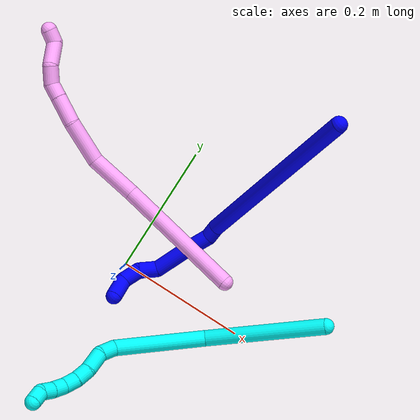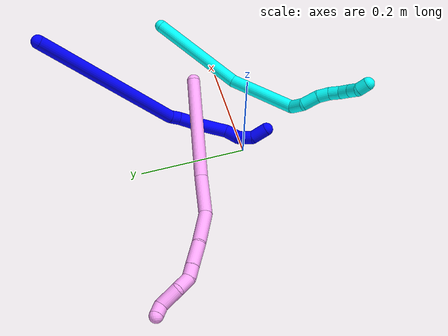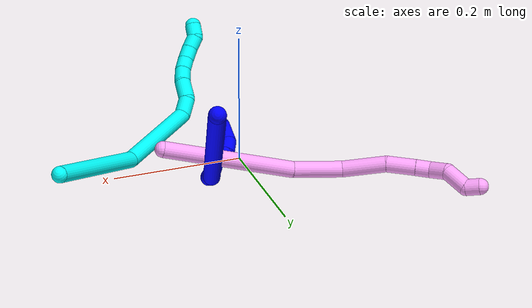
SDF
<sdf version="1.7">
 <world name="default">
  <model name="1">
   <static>0</static>
   <link name="1">
    <collision name="collision-cylinder-e_1_1_4">
     <pose>-0.004018 0.023213 -0.146295 -2.98423 -0.027121 0.340684</pose>
     <geometry><cylinder><radius>0.0125</radius><length>0.296358</length></cylinder></geometry>
     <surface>
      <friction><ode><mu>1.16</mu><mu2>1.16</mu2><slip1>0</slip1><slip2>0</slip2></ode></friction>
      <contact><ode><kp>1e+06</kp><kd>1</kd><max_vel>0</max_vel><min_depth>0.001</min_depth></ode></contact>
     </surface>
    </collision>
    <visual name="visual-cylinder-e_1_1_4">
     <pose>-0.004018 0.023213 -0.146295 -2.98423 -0.027121 0.340684</pose>
     <geometry><cylinder><radius>0.0125</radius><length>0.296358</length></cylinder></geometry>
     <material><ambient>0 0 1 1</ambient></material>
    </visual>
    <collision name="collision-cylinder-e_2_4_5">
     <pose>-0.006138 0.045737 -0.302384 3.07143 0.191033 2.43936</pose>
     <geometry><cylinder><radius>0.0125</radius><length>0.020002</length></cylinder></geometry>
     <surface>
      <friction><ode><mu>1.16</mu><mu2>1.16</mu2><slip1>0</slip1><slip2>0</slip2></ode></friction>
      <contact><ode><kp>1e+06</kp><kd>1</kd><max_vel>0</max_vel><min_depth>0.001</min_depth></ode></contact>
     </surface>
    </collision>
    <visual name="visual-cylinder-e_2_4_5">
     <pose>-0.006138 0.045737 -0.302384 3.07143 0.191033 2.43936</pose>
     <geometry><cylinder><radius>0.0125</radius><length>0.020002</length></cylinder></geometry>
     <material><ambient>0 0 1 1</ambient></material>
    </visual>
    <collision name="collision-cylinder-e_3_5_6">
     <pose>-0.006481 0.037928 -0.330667 2.77396 -0.112707 -0.589214</pose>
     <geometry><cylinder><radius>0.0125</radius><length>0.039878</length></cylinder></geometry>
     <surface>
      <friction><ode><mu>1.16</mu><mu2>1.16</mu2><slip1>0</slip1><slip2>0</slip2></ode></friction>
      <contact><ode><kp>1e+06</kp><kd>1</kd><max_vel>0</max_vel><min_depth>0.001</min_depth></ode></contact>
     </surface>
    </collision>
    <visual name="visual-cylinder-e_3_5_6">
     <pose>-0.006481 0.037928 -0.330667 2.77396 -0.112707 -0.589214</pose>
     <geometry><cylinder><radius>0.0125</radius><length>0.039878</length></cylinder></geometry>
     <material><ambient>0 0 1 1</ambient></material>
    </visual>
    <collision name="collision-cylinder-e_4_6_7">
     <pose>-0.010253 0.020096 -0.37478 2.74567 -0.055008 -0.272603</pose>
     <geometry><cylinder><radius>0.0125</radius><length>0.055629</length></cylinder></geometry>
     <surface>
      <friction><ode><mu>1.16</mu><mu2>1.16</mu2><slip1>0</slip1><slip2>0</slip2></ode></friction>
      <contact><ode><kp>1e+06</kp><kd>1</kd><max_vel>0</max_vel><min_depth>0.001</min_depth></ode></contact>
     </surface>
    </collision>
    <visual name="visual-cylinder-e_4_6_7">
     <pose>-0.010253 0.020096 -0.37478 2.74567 -0.055008 -0.272603</pose>
     <geometry><cylinder><radius>0.0125</radius><length>0.055629</length></cylinder></geometry>
     <material><ambient>0 0 1 1</ambient></material>
    </visual>
    <collision name="collision-cylinder-e_5_7_8">
     <pose>-0.018827 0.000609 -0.409309 2.36345 -0.513086 -1.13842</pose>
     <geometry><cylinder><radius>0.0125</radius><length>0.028703</length></cylinder></geometry>
     <surface>
      <friction><ode><mu>1.16</mu><mu2>1.16</mu2><slip1>0</slip1><slip2>0</slip2></ode></friction>
      <contact><ode><kp>1e+06</kp><kd>1</kd><max_vel>0</max_vel><min_depth>0.001</min_depth></ode></contact>
     </surface>
    </collision>
    <visual name="visual-cylinder-e_5_7_8">
     <pose>-0.018827 0.000609 -0.409309 2.36345 -0.513086 -1.13842</pose>
     <geometry><cylinder><radius>0.0125</radius><length>0.028703</length></cylinder></geometry>
     <material><ambient>0 0 1 1</ambient></material>
    </visual>
    <collision name="collision-cylinder-e_6_8_9">
     <pose>-0.026076 -0.018707 -0.427609 2.29886 -0.014482 -0.032307</pose>
     <geometry><cylinder><radius>0.0125</radius><length>0.028238</length></cylinder></geometry>
     <surface>
      <friction><ode><mu>1.16</mu><mu2>1.16</mu2><slip1>0</slip1><slip2>0</slip2></ode></friction>
      <contact><ode><kp>1e+06</kp><kd>1</kd><max_vel>0</max_vel><min_depth>0.001</min_depth></ode></contact>
     </surface>
    </collision>
    <visual name="visual-cylinder-e_6_8_9">
     <pose>-0.026076 -0.018707 -0.427609 2.29886 -0.014482 -0.032307</pose>
     <geometry><cylinder><radius>0.0125</radius><length>0.028238</length></cylinder></geometry>
     <material><ambient>0 0 1 1</ambient></material>
    </visual>
    <collision name="collision-cylinder-e_7_9_2">
     <pose>-0.019654 -0.041898 -0.443264 2.0303 0.438882 0.689705</pose>
     <geometry><cylinder><radius>0.0125</radius><length>0.031192</length></cylinder></geometry>
     <surface>
      <friction><ode><mu>1.16</mu><mu2>1.16</mu2><slip1>0</slip1><slip2>0</slip2></ode></friction>
      <contact><ode><kp>1e+06</kp><kd>1</kd><max_vel>0</max_vel><min_depth>0.001</min_depth></ode></contact>
     </surface>
    </collision>
    <visual name="visual-cylinder-e_7_9_2">
     <pose>-0.019654 -0.041898 -0.443264 2.0303 0.438882 0.689705</pose>
     <geometry><cylinder><radius>0.0125</radius><length>0.031192</length></cylinder></geometry>
     <material><ambient>0 0 1 1</ambient></material>
    </visual>
    <collision name="collision-sphere-2">
     <pose>-0.013027 -0.054552 -0.449525 0 -0 0</pose>
     <geometry><sphere><radius>0.0125</radius></sphere></geometry>
     <surface>
      <friction><ode><mu>1.16</mu><mu2>1.16</mu2><slip1>0</slip1><slip2>0</slip2></ode></friction>
      <contact><ode><kp>1e+06</kp><kd>1</kd><max_vel>0</max_vel><min_depth>0.001</min_depth></ode></contact>
     </surface>
    </collision>
    <visual name="visual-sphere-2">
     <pose>-0.013027 -0.054552 -0.449525 0 -0 0</pose>
     <geometry><sphere><radius>0.0125</radius></sphere></geometry>
     <material><ambient>0 0 1 1</ambient></material>
    </visual>
    <collision name="collision-sphere-9">
     <pose>-0.026281 -0.029245 -0.437003 0 -0 0</pose>
     <geometry><sphere><radius>0.0125</radius></sphere></geometry>
     <surface>
      <friction><ode><mu>1.16</mu><mu2>1.16</mu2><slip1>0</slip1><slip2>0</slip2></ode></friction>
      <contact><ode><kp>1e+06</kp><kd>1</kd><max_vel>0</max_vel><min_depth>0.001</min_depth></ode></contact>
     </surface>
    </collision>
    <visual name="visual-sphere-9">
     <pose>-0.026281 -0.029245 -0.437003 0 -0 0</pose>
     <geometry><sphere><radius>0.0125</radius></sphere></geometry>
     <material><ambient>0 0 1 1</ambient></material>
    </visual>
    <collision name="collision-sphere-4">
     <pose>-0.008037 0.046425 -0.292589 0 -0 0</pose>
     <geometry><sphere><radius>0.0125</radius></sphere></geometry>
     <surface>
      <friction><ode><mu>1.16</mu><mu2>1.16</mu2><slip1>0</slip1><slip2>0</slip2></ode></friction>
      <contact><ode><kp>1e+06</kp><kd>1</kd><max_vel>0</max_vel><min_depth>0.001</min_depth></ode></contact>
     </surface>
    </collision>
    <visual name="visual-sphere-4">
     <pose>-0.008037 0.046425 -0.292589 0 -0 0</pose>
     <geometry><sphere><radius>0.0125</radius></sphere></geometry>
     <material><ambient>0 0 1 1</ambient></material>
    </visual>
    <collision name="collision-sphere-1">
     <geometry><sphere><radius>0.0125</radius></sphere></geometry>
     <surface>
      <friction><ode><mu>1.16</mu><mu2>1.16</mu2><slip1>0</slip1><slip2>0</slip2></ode></friction>
      <contact><ode><kp>1e+06</kp><kd>1</kd><max_vel>0</max_vel><min_depth>0.001</min_depth></ode></contact>
     </surface>
    </collision>
    <visual name="visual-sphere-1">
     <geometry><sphere><radius>0.0125</radius></sphere></geometry>
     <material><ambient>0 0 1 1</ambient></material>
    </visual>
    <collision name="collision-sphere-8">
     <pose>-0.025872 -0.008168 -0.418215 0 -0 0</pose>
     <geometry><sphere><radius>0.0125</radius></sphere></geometry>
     <surface>
      <friction><ode><mu>1.16</mu><mu2>1.16</mu2><slip1>0</slip1><slip2>0</slip2></ode></friction>
      <contact><ode><kp>1e+06</kp><kd>1</kd><max_vel>0</max_vel><min_depth>0.001</min_depth></ode></contact>
     </surface>
    </collision>
    <visual name="visual-sphere-8">
     <pose>-0.025872 -0.008168 -0.418215 0 -0 0</pose>
     <geometry><sphere><radius>0.0125</radius></sphere></geometry>
     <material><ambient>0 0 1 1</ambient></material>
    </visual>
    <collision name="collision-sphere-5">
     <pose>-0.004239 0.045048 -0.312179 0 -0 0</pose>
     <geometry><sphere><radius>0.0125</radius></sphere></geometry>
     <surface>
      <friction><ode><mu>1.16</mu><mu2>1.16</mu2><slip1>0</slip1><slip2>0</slip2></ode></friction>
      <contact><ode><kp>1e+06</kp><kd>1</kd><max_vel>0</max_vel><min_depth>0.001</min_depth></ode></contact>
     </surface>
    </collision>
    <visual name="visual-sphere-5">
     <pose>-0.004239 0.045048 -0.312179 0 -0 0</pose>
     <geometry><sphere><radius>0.0125</radius></sphere></geometry>
     <material><ambient>0 0 1 1</ambient></material>
    </visual>
    <collision name="collision-sphere-6">
     <pose>-0.008724 0.030807 -0.349156 0 -0 0</pose>
     <geometry><sphere><radius>0.0125</radius></sphere></geometry>
     <surface>
      <friction><ode><mu>1.16</mu><mu2>1.16</mu2><slip1>0</slip1><slip2>0</slip2></ode></friction>
      <contact><ode><kp>1e+06</kp><kd>1</kd><max_vel>0</max_vel><min_depth>0.001</min_depth></ode></contact>
     </surface>
    </collision>
    <visual name="visual-sphere-6">
     <pose>-0.008724 0.030807 -0.349156 0 -0 0</pose>
     <geometry><sphere><radius>0.0125</radius></sphere></geometry>
     <material><ambient>0 0 1 1</ambient></material>
    </visual>
    <collision name="collision-sphere-7">
     <pose>-0.011782 0.009386 -0.400404 0 -0 0</pose>
     <geometry><sphere><radius>0.0125</radius></sphere></geometry>
     <surface>
      <friction><ode><mu>1.16</mu><mu2>1.16</mu2><slip1>0</slip1><slip2>0</slip2></ode></friction>
      <contact><ode><kp>1e+06</kp><kd>1</kd><max_vel>0</max_vel><min_depth>0.001</min_depth></ode></contact>
     </surface>
    </collision>
    <visual name="visual-sphere-7">
     <pose>-0.011782 0.009386 -0.400404 0 -0 0</pose>
     <geometry><sphere><radius>0.0125</radius></sphere></geometry>
     <material><ambient>0 0 1 1</ambient></material>
    </visual>
    <inertial>
     <pose>-0.008064 0.017214 -0.242177 0 -0 0</pose>
     <mass>0.5</mass>
     <inertia>
      <ixx>0.002801</ixx>
      <ixy>0</ixy>
      <ixz>0</ixz>
      <iyy>-0.001331</iyy>
      <iyz>0</iyz>
      <izz>-0.0003</izz>
     </inertia>
    </inertial>
   </link>
   <pose>0.145542 0.329707 0.245091 -0.96862 -0.152689 -0.386949</pose>
  </model>
  <model name="3">
   <static>0</static>
   <link name="3">
    <collision name="collision-cylinder-e_1_1_4">
     <pose>-0.060215 -0.00586 -0.072539 3.06098 -0.691232 -2.91852</pose>
     <geometry><cylinder><radius>0.0125</radius><length>0.188915</length></cylinder></geometry>
     <surface>
      <friction><ode><mu>1.16</mu><mu2>1.16</mu2><slip1>0</slip1><slip2>0</slip2></ode></friction>
      <contact><ode><kp>1e+06</kp><kd>1</kd><max_vel>0</max_vel><min_depth>0.001</min_depth></ode></contact>
     </surface>
    </collision>
    <visual name="visual-cylinder-e_1_1_4">
     <pose>-0.060215 -0.00586 -0.072539 3.06098 -0.691232 -2.91852</pose>
     <geometry><cylinder><radius>0.0125</radius><length>0.188915</length></cylinder></geometry>
     <material><ambient>0.003922 1 0.996078 1</ambient></material>
    </visual>
    <collision name="collision-cylinder-e_2_4_5">
     <pose>-0.182528 -0.024697 -0.176338 2.74813 -1.07177 -2.49397</pose>
     <geometry><cylinder><radius>0.0125</radius><length>0.141444</length></cylinder></geometry>
     <surface>
      <friction><ode><mu>1.16</mu><mu2>1.16</mu2><slip1>0</slip1><slip2>0</slip2></ode></friction>
      <contact><ode><kp>1e+06</kp><kd>1</kd><max_vel>0</max_vel><min_depth>0.001</min_depth></ode></contact>
     </surface>
    </collision>
    <visual name="visual-cylinder-e_2_4_5">
     <pose>-0.182528 -0.024697 -0.176338 2.74813 -1.07177 -2.49397</pose>
     <geometry><cylinder><radius>0.0125</radius><length>0.141444</length></cylinder></geometry>
     <material><ambient>0.003922 1 0.996078 1</ambient></material>
    </visual>
    <collision name="collision-cylinder-e_3_5_6">
     <pose>-0.256936 -0.044728 -0.206585 1.42833 -1.046 -0.9269</pose>
     <geometry><cylinder><radius>0.0125</radius><length>0.02845</length></cylinder></geometry>
     <surface>
      <friction><ode><mu>1.16</mu><mu2>1.16</mu2><slip1>0</slip1><slip2>0</slip2></ode></friction>
      <contact><ode><kp>1e+06</kp><kd>1</kd><max_vel>0</max_vel><min_depth>0.001</min_depth></ode></contact>
     </surface>
    </collision>
    <visual name="visual-cylinder-e_3_5_6">
     <pose>-0.256936 -0.044728 -0.206585 1.42833 -1.046 -0.9269</pose>
     <geometry><cylinder><radius>0.0125</radius><length>0.02845</length></cylinder></geometry>
     <material><ambient>0.003922 1 0.996078 1</ambient></material>
    </visual>
    <collision name="collision-cylinder-e_4_6_7">
     <pose>-0.27792 -0.065484 -0.205949 1.59822 -0.564151 -0.578987</pose>
     <geometry><cylinder><radius>0.0125</radius><length>0.03244</length></cylinder></geometry>
     <surface>
      <friction><ode><mu>1.16</mu><mu2>1.16</mu2><slip1>0</slip1><slip2>0</slip2></ode></friction>
      <contact><ode><kp>1e+06</kp><kd>1</kd><max_vel>0</max_vel><min_depth>0.001</min_depth></ode></contact>
     </surface>
    </collision>
    <visual name="visual-cylinder-e_4_6_7">
     <pose>-0.27792 -0.065484 -0.205949 1.59822 -0.564151 -0.578987</pose>
     <geometry><cylinder><radius>0.0125</radius><length>0.03244</length></cylinder></geometry>
     <material><ambient>0.003922 1 0.996078 1</ambient></material>
    </visual>
    <collision name="collision-cylinder-e_5_7_8">
     <pose>-0.294604 -0.08756 -0.208345 1.80755 -0.749147 -0.926125</pose>
     <geometry><cylinder><radius>0.0125</radius><length>0.023528</length></cylinder></geometry>
     <surface>
      <friction><ode><mu>1.16</mu><mu2>1.16</mu2><slip1>0</slip1><slip2>0</slip2></ode></friction>
      <contact><ode><kp>1e+06</kp><kd>1</kd><max_vel>0</max_vel><min_depth>0.001</min_depth></ode></contact>
     </surface>
    </collision>
    <visual name="visual-cylinder-e_5_7_8">
     <pose>-0.294604 -0.08756 -0.208345 1.80755 -0.749147 -0.926125</pose>
     <geometry><cylinder><radius>0.0125</radius><length>0.023528</length></cylinder></geometry>
     <material><ambient>0.003922 1 0.996078 1</ambient></material>
    </visual>
    <collision name="collision-cylinder-e_6_8_9">
     <pose>-0.311644 -0.102089 -0.21225 1.86791 -0.951426 -1.21677</pose>
     <geometry><cylinder><radius>0.0125</radius><length>0.022178</length></cylinder></geometry>
     <surface>
      <friction><ode><mu>1.16</mu><mu2>1.16</mu2><slip1>0</slip1><slip2>0</slip2></ode></friction>
      <contact><ode><kp>1e+06</kp><kd>1</kd><max_vel>0</max_vel><min_depth>0.001</min_depth></ode></contact>
     </surface>
    </collision>
    <visual name="visual-cylinder-e_6_8_9">
     <pose>-0.311644 -0.102089 -0.21225 1.86791 -0.951426 -1.21677</pose>
     <geometry><cylinder><radius>0.0125</radius><length>0.022178</length></cylinder></geometry>
     <material><ambient>0.003922 1 0.996078 1</ambient></material>
    </visual>
    <collision name="collision-cylinder-e_7_9_10">
     <pose>-0.330227 -0.112989 -0.213493 1.43637 -1.10621 -0.989513</pose>
     <geometry><cylinder><radius>0.0125</radius><length>0.021372</length></cylinder></geometry>
     <surface>
      <friction><ode><mu>1.16</mu><mu2>1.16</mu2><slip1>0</slip1><slip2>0</slip2></ode></friction>
      <contact><ode><kp>1e+06</kp><kd>1</kd><max_vel>0</max_vel><min_depth>0.001</min_depth></ode></contact>
     </surface>
    </collision>
    <visual name="visual-cylinder-e_7_9_10">
     <pose>-0.330227 -0.112989 -0.213493 1.43637 -1.10621 -0.989513</pose>
     <geometry><cylinder><radius>0.0125</radius><length>0.021372</length></cylinder></geometry>
     <material><ambient>0.003922 1 0.996078 1</ambient></material>
    </visual>
    <collision name="collision-cylinder-e_8_10_11">
     <pose>-0.349556 -0.121107 -0.211257 1.12904 -1.2062 -0.822514</pose>
     <geometry><cylinder><radius>0.0125</radius><length>0.020927</length></cylinder></geometry>
     <surface>
      <friction><ode><mu>1.16</mu><mu2>1.16</mu2><slip1>0</slip1><slip2>0</slip2></ode></friction>
      <contact><ode><kp>1e+06</kp><kd>1</kd><max_vel>0</max_vel><min_depth>0.001</min_depth></ode></contact>
     </surface>
    </collision>
    <visual name="visual-cylinder-e_8_10_11">
     <pose>-0.349556 -0.121107 -0.211257 1.12904 -1.2062 -0.822514</pose>
     <geometry><cylinder><radius>0.0125</radius><length>0.020927</length></cylinder></geometry>
     <material><ambient>0.003922 1 0.996078 1</ambient></material>
    </visual>
    <collision name="collision-cylinder-e_9_11_2">
     <pose>-0.365358 -0.132828 -0.208397 1.42047 -0.619904 -0.537507</pose>
     <geometry><cylinder><radius>0.0125</radius><length>0.020747</length></cylinder></geometry>
     <surface>
      <friction><ode><mu>1.16</mu><mu2>1.16</mu2><slip1>0</slip1><slip2>0</slip2></ode></friction>
      <contact><ode><kp>1e+06</kp><kd>1</kd><max_vel>0</max_vel><min_depth>0.001</min_depth></ode></contact>
     </surface>
    </collision>
    <visual name="visual-cylinder-e_9_11_2">
     <pose>-0.365358 -0.132828 -0.208397 1.42047 -0.619904 -0.537507</pose>
     <geometry><cylinder><radius>0.0125</radius><length>0.020747</length></cylinder></geometry>
     <material><ambient>0.003922 1 0.996078 1</ambient></material>
    </visual>
    <collision name="collision-sphere-2">
     <pose>-0.371384 -0.141176 -0.207133 0 -0 0</pose>
     <geometry><sphere><radius>0.0125</radius></sphere></geometry>
     <surface>
      <friction><ode><mu>1.16</mu><mu2>1.16</mu2><slip1>0</slip1><slip2>0</slip2></ode></friction>
      <contact><ode><kp>1e+06</kp><kd>1</kd><max_vel>0</max_vel><min_depth>0.001</min_depth></ode></contact>
     </surface>
    </collision>
    <visual name="visual-sphere-2">
     <pose>-0.371384 -0.141176 -0.207133 0 -0 0</pose>
     <geometry><sphere><radius>0.0125</radius></sphere></geometry>
     <material><ambient>0.003922 1 0.996078 1</ambient></material>
    </visual>
    <collision name="collision-sphere-11">
     <pose>-0.359331 -0.12448 -0.209662 0 -0 0</pose>
     <geometry><sphere><radius>0.0125</radius></sphere></geometry>
     <surface>
      <friction><ode><mu>1.16</mu><mu2>1.16</mu2><slip1>0</slip1><slip2>0</slip2></ode></friction>
      <contact><ode><kp>1e+06</kp><kd>1</kd><max_vel>0</max_vel><min_depth>0.001</min_depth></ode></contact>
     </surface>
    </collision>
    <visual name="visual-sphere-11">
     <pose>-0.359331 -0.12448 -0.209662 0 -0 0</pose>
     <geometry><sphere><radius>0.0125</radius></sphere></geometry>
     <material><ambient>0.003922 1 0.996078 1</ambient></material>
    </visual>
    <collision name="collision-sphere-10">
     <pose>-0.33978 -0.117734 -0.212852 0 -0 0</pose>
     <geometry><sphere><radius>0.0125</radius></sphere></geometry>
     <surface>
      <friction><ode><mu>1.16</mu><mu2>1.16</mu2><slip1>0</slip1><slip2>0</slip2></ode></friction>
      <contact><ode><kp>1e+06</kp><kd>1</kd><max_vel>0</max_vel><min_depth>0.001</min_depth></ode></contact>
     </surface>
    </collision>
    <visual name="visual-sphere-10">
     <pose>-0.33978 -0.117734 -0.212852 0 -0 0</pose>
     <geometry><sphere><radius>0.0125</radius></sphere></geometry>
     <material><ambient>0.003922 1 0.996078 1</ambient></material>
    </visual>
    <collision name="collision-sphere-9">
     <pose>-0.320674 -0.108245 -0.214135 0 -0 0</pose>
     <geometry><sphere><radius>0.0125</radius></sphere></geometry>
     <surface>
      <friction><ode><mu>1.16</mu><mu2>1.16</mu2><slip1>0</slip1><slip2>0</slip2></ode></friction>
      <contact><ode><kp>1e+06</kp><kd>1</kd><max_vel>0</max_vel><min_depth>0.001</min_depth></ode></contact>
     </surface>
    </collision>
    <visual name="visual-sphere-9">
     <pose>-0.320674 -0.108245 -0.214135 0 -0 0</pose>
     <geometry><sphere><radius>0.0125</radius></sphere></geometry>
     <material><ambient>0.003922 1 0.996078 1</ambient></material>
    </visual>
    <collision name="collision-sphere-4">
     <pose>-0.120431 -0.011721 -0.145079 0 -0 0</pose>
     <geometry><sphere><radius>0.0125</radius></sphere></geometry>
     <surface>
      <friction><ode><mu>1.16</mu><mu2>1.16</mu2><slip1>0</slip1><slip2>0</slip2></ode></friction>
      <contact><ode><kp>1e+06</kp><kd>1</kd><max_vel>0</max_vel><min_depth>0.001</min_depth></ode></contact>
     </surface>
    </collision>
    <visual name="visual-sphere-4">
     <pose>-0.120431 -0.011721 -0.145079 0 -0 0</pose>
     <geometry><sphere><radius>0.0125</radius></sphere></geometry>
     <material><ambient>0.003922 1 0.996078 1</ambient></material>
    </visual>
    <collision name="collision-sphere-1">
     <geometry><sphere><radius>0.0125</radius></sphere></geometry>
     <surface>
      <friction><ode><mu>1.16</mu><mu2>1.16</mu2><slip1>0</slip1><slip2>0</slip2></ode></friction>
      <contact><ode><kp>1e+06</kp><kd>1</kd><max_vel>0</max_vel><min_depth>0.001</min_depth></ode></contact>
     </surface>
    </collision>
    <visual name="visual-sphere-1">
     <geometry><sphere><radius>0.0125</radius></sphere></geometry>
     <material><ambient>0.003922 1 0.996078 1</ambient></material>
    </visual>
    <collision name="collision-sphere-8">
     <pose>-0.302615 -0.095934 -0.210366 0 -0 0</pose>
     <geometry><sphere><radius>0.0125</radius></sphere></geometry>
     <surface>
      <friction><ode><mu>1.16</mu><mu2>1.16</mu2><slip1>0</slip1><slip2>0</slip2></ode></friction>
      <contact><ode><kp>1e+06</kp><kd>1</kd><max_vel>0</max_vel><min_depth>0.001</min_depth></ode></contact>
     </surface>
    </collision>
    <visual name="visual-sphere-8">
     <pose>-0.302615 -0.095934 -0.210366 0 -0 0</pose>
     <geometry><sphere><radius>0.0125</radius></sphere></geometry>
     <material><ambient>0.003922 1 0.996078 1</ambient></material>
    </visual>
    <collision name="collision-sphere-5">
     <pose>-0.244625 -0.037673 -0.207597 0 -0 0</pose>
     <geometry><sphere><radius>0.0125</radius></sphere></geometry>
     <surface>
      <friction><ode><mu>1.16</mu><mu2>1.16</mu2><slip1>0</slip1><slip2>0</slip2></ode></friction>
      <contact><ode><kp>1e+06</kp><kd>1</kd><max_vel>0</max_vel><min_depth>0.001</min_depth></ode></contact>
     </surface>
    </collision>
    <visual name="visual-sphere-5">
     <pose>-0.244625 -0.037673 -0.207597 0 -0 0</pose>
     <geometry><sphere><radius>0.0125</radius></sphere></geometry>
     <material><ambient>0.003922 1 0.996078 1</ambient></material>
    </visual>
    <collision name="collision-sphere-6">
     <pose>-0.269247 -0.051783 -0.205573 0 -0 0</pose>
     <geometry><sphere><radius>0.0125</radius></sphere></geometry>
     <surface>
      <friction><ode><mu>1.16</mu><mu2>1.16</mu2><slip1>0</slip1><slip2>0</slip2></ode></friction>
      <contact><ode><kp>1e+06</kp><kd>1</kd><max_vel>0</max_vel><min_depth>0.001</min_depth></ode></contact>
     </surface>
    </collision>
    <visual name="visual-sphere-6">
     <pose>-0.269247 -0.051783 -0.205573 0 -0 0</pose>
     <geometry><sphere><radius>0.0125</radius></sphere></geometry>
     <material><ambient>0.003922 1 0.996078 1</ambient></material>
    </visual>
    <collision name="collision-sphere-7">
     <pose>-0.286592 -0.079186 -0.206325 0 -0 0</pose>
     <geometry><sphere><radius>0.0125</radius></sphere></geometry>
     <surface>
      <friction><ode><mu>1.16</mu><mu2>1.16</mu2><slip1>0</slip1><slip2>0</slip2></ode></friction>
      <contact><ode><kp>1e+06</kp><kd>1</kd><max_vel>0</max_vel><min_depth>0.001</min_depth></ode></contact>
     </surface>
    </collision>
    <visual name="visual-sphere-7">
     <pose>-0.286592 -0.079186 -0.206325 0 -0 0</pose>
     <geometry><sphere><radius>0.0125</radius></sphere></geometry>
     <material><ambient>0.003922 1 0.996078 1</ambient></material>
    </visual>
    <inertial>
     <pose>-0.178629 -0.040053 -0.148241 0 -0 0</pose>
     <mass>0.5</mass>
     <inertia>
      <ixx>-0.000716</ixx>
      <ixy>0</ixy>
      <ixz>0</ixz>
      <iyy>0.000611</iyy>
      <iyz>0</iyz>
      <izz>0.00066</izz>
     </inertia>
    </inertial>
   </link>
   <pose>0.303565 0.086365 0.06729 -0.405056 0.501294 0.311089</pose>
  </model>
  <model name="4">
   <static>0</static>
   <link name="4">
    <collision name="collision-cylinder-e_1_1_4">
     <pose>-0.015883 -0.010001 0.098374 0.101316 -0.159269 -0.008092</pose>
     <geometry><cylinder><radius>0.0125</radius><length>0.200298</length></cylinder></geometry>
     <surface>
      <friction><ode><mu>1.16</mu><mu2>1.16</mu2><slip1>0</slip1><slip2>0</slip2></ode></friction>
      <contact><ode><kp>1e+06</kp><kd>1</kd><max_vel>0</max_vel><min_depth>0.001</min_depth></ode></contact>
     </surface>
    </collision>
    <visual name="visual-cylinder-e_1_1_4">
     <pose>-0.015883 -0.010001 0.098374 0.101316 -0.159269 -0.008092</pose>
     <geometry><cylinder><radius>0.0125</radius><length>0.200298</length></cylinder></geometry>
     <material><ambient>1 0.65098 0.996078 1</ambient></material>
    </visual>
    <collision name="collision-cylinder-e_2_4_5">
     <pose>-0.033107 -0.019725 0.234661 -0.007315 -0.03533 0.000129</pose>
     <geometry><cylinder><radius>0.0125</radius><length>0.075874</length></cylinder></geometry>
     <surface>
      <friction><ode><mu>1.16</mu><mu2>1.16</mu2><slip1>0</slip1><slip2>0</slip2></ode></friction>
      <contact><ode><kp>1e+06</kp><kd>1</kd><max_vel>0</max_vel><min_depth>0.001</min_depth></ode></contact>
     </surface>
    </collision>
    <visual name="visual-cylinder-e_2_4_5">
     <pose>-0.033107 -0.019725 0.234661 -0.007315 -0.03533 0.000129</pose>
     <geometry><cylinder><radius>0.0125</radius><length>0.075874</length></cylinder></geometry>
     <material><ambient>1 0.65098 0.996078 1</ambient></material>
    </visual>
    <collision name="collision-cylinder-e_3_5_6">
     <pose>-0.037197 -0.006688 0.303798 -0.387917 -0.081342 0.015986</pose>
     <geometry><cylinder><radius>0.0125</radius><length>0.067687</length></cylinder></geometry>
     <surface>
      <friction><ode><mu>1.16</mu><mu2>1.16</mu2><slip1>0</slip1><slip2>0</slip2></ode></friction>
      <contact><ode><kp>1e+06</kp><kd>1</kd><max_vel>0</max_vel><min_depth>0.001</min_depth></ode></contact>
     </surface>
    </collision>
    <visual name="visual-cylinder-e_3_5_6">
     <pose>-0.037197 -0.006688 0.303798 -0.387917 -0.081342 0.015986</pose>
     <geometry><cylinder><radius>0.0125</radius><length>0.067687</length></cylinder></geometry>
     <material><ambient>1 0.65098 0.996078 1</ambient></material>
    </visual>
    <collision name="collision-cylinder-e_4_6_7">
     <pose>-0.046227 0.011648 0.355308 -0.268277 -0.290106 0.039421</pose>
     <geometry><cylinder><radius>0.0125</radius><length>0.043909</length></cylinder></geometry>
     <surface>
      <friction><ode><mu>1.16</mu><mu2>1.16</mu2><slip1>0</slip1><slip2>0</slip2></ode></friction>
      <contact><ode><kp>1e+06</kp><kd>1</kd><max_vel>0</max_vel><min_depth>0.001</min_depth></ode></contact>
     </surface>
    </collision>
    <visual name="visual-cylinder-e_4_6_7">
     <pose>-0.046227 0.011648 0.355308 -0.268277 -0.290106 0.039421</pose>
     <geometry><cylinder><radius>0.0125</radius><length>0.043909</length></cylinder></geometry>
     <material><ambient>1 0.65098 0.996078 1</ambient></material>
    </visual>
    <collision name="collision-cylinder-e_5_7_8">
     <pose>-0.055946 0.019781 0.386389 -0.232562 -0.30062 0.035378</pose>
     <geometry><cylinder><radius>0.0125</radius><length>0.023232</length></cylinder></geometry>
     <surface>
      <friction><ode><mu>1.16</mu><mu2>1.16</mu2><slip1>0</slip1><slip2>0</slip2></ode></friction>
      <contact><ode><kp>1e+06</kp><kd>1</kd><max_vel>0</max_vel><min_depth>0.001</min_depth></ode></contact>
     </surface>
    </collision>
    <visual name="visual-cylinder-e_5_7_8">
     <pose>-0.055946 0.019781 0.386389 -0.232562 -0.30062 0.035378</pose>
     <geometry><cylinder><radius>0.0125</radius><length>0.023232</length></cylinder></geometry>
     <material><ambient>1 0.65098 0.996078 1</ambient></material>
    </visual>
    <collision name="collision-cylinder-e_6_8_9">
     <pose>-0.065348 0.031311 0.406623 -0.760138 -0.429359 0.173772</pose>
     <geometry><cylinder><radius>0.0125</radius><length>0.028644</length></cylinder></geometry>
     <surface>
      <friction><ode><mu>1.16</mu><mu2>1.16</mu2><slip1>0</slip1><slip2>0</slip2></ode></friction>
      <contact><ode><kp>1e+06</kp><kd>1</kd><max_vel>0</max_vel><min_depth>0.001</min_depth></ode></contact>
     </surface>
    </collision>
    <visual name="visual-cylinder-e_6_8_9">
     <pose>-0.065348 0.031311 0.406623 -0.760138 -0.429359 0.173772</pose>
     <geometry><cylinder><radius>0.0125</radius><length>0.028644</length></cylinder></geometry>
     <material><ambient>1 0.65098 0.996078 1</ambient></material>
    </visual>
    <collision name="collision-cylinder-e_7_9_10">
     <pose>-0.087019 0.045815 0.426196 -0.499625 -0.93694 0.256805</pose>
     <geometry><cylinder><radius>0.0125</radius><length>0.038992</length></cylinder></geometry>
     <surface>
      <friction><ode><mu>1.16</mu><mu2>1.16</mu2><slip1>0</slip1><slip2>0</slip2></ode></friction>
      <contact><ode><kp>1e+06</kp><kd>1</kd><max_vel>0</max_vel><min_depth>0.001</min_depth></ode></contact>
     </surface>
    </collision>
    <visual name="visual-cylinder-e_7_9_10">
     <pose>-0.087019 0.045815 0.426196 -0.499625 -0.93694 0.256805</pose>
     <geometry><cylinder><radius>0.0125</radius><length>0.038992</length></cylinder></geometry>
     <material><ambient>1 0.65098 0.996078 1</ambient></material>
    </visual>
    <collision name="collision-cylinder-e_8_10_2">
     <pose>-0.104526 0.056501 0.445514 -0.511444 -0.169083 0.044304</pose>
     <geometry><cylinder><radius>0.0125</radius><length>0.021364</length></cylinder></geometry>
     <surface>
      <friction><ode><mu>1.16</mu><mu2>1.16</mu2><slip1>0</slip1><slip2>0</slip2></ode></friction>
      <contact><ode><kp>1e+06</kp><kd>1</kd><max_vel>0</max_vel><min_depth>0.001</min_depth></ode></contact>
     </surface>
    </collision>
    <visual name="visual-cylinder-e_8_10_2">
     <pose>-0.104526 0.056501 0.445514 -0.511444 -0.169083 0.044304</pose>
     <geometry><cylinder><radius>0.0125</radius><length>0.021364</length></cylinder></geometry>
     <material><ambient>1 0.65098 0.996078 1</ambient></material>
    </visual>
    <collision name="collision-sphere-2">
     <pose>-0.106323 0.061654 0.454696 0 -0 0</pose>
     <geometry><sphere><radius>0.0125</radius></sphere></geometry>
     <surface>
      <friction><ode><mu>1.16</mu><mu2>1.16</mu2><slip1>0</slip1><slip2>0</slip2></ode></friction>
      <contact><ode><kp>1e+06</kp><kd>1</kd><max_vel>0</max_vel><min_depth>0.001</min_depth></ode></contact>
     </surface>
    </collision>
    <visual name="visual-sphere-2">
     <pose>-0.106323 0.061654 0.454696 0 -0 0</pose>
     <geometry><sphere><radius>0.0125</radius></sphere></geometry>
     <material><ambient>1 0.65098 0.996078 1</ambient></material>
    </visual>
    <collision name="collision-sphere-10">
     <pose>-0.102728 0.051347 0.436331 0 -0 0</pose>
     <geometry><sphere><radius>0.0125</radius></sphere></geometry>
     <surface>
      <friction><ode><mu>1.16</mu><mu2>1.16</mu2><slip1>0</slip1><slip2>0</slip2></ode></friction>
      <contact><ode><kp>1e+06</kp><kd>1</kd><max_vel>0</max_vel><min_depth>0.001</min_depth></ode></contact>
     </surface>
    </collision>
    <visual name="visual-sphere-10">
     <pose>-0.102728 0.051347 0.436331 0 -0 0</pose>
     <geometry><sphere><radius>0.0125</radius></sphere></geometry>
     <material><ambient>1 0.65098 0.996078 1</ambient></material>
    </visual>
    <collision name="collision-sphere-9">
     <pose>-0.07131 0.040283 0.416061 0 -0 0</pose>
     <geometry><sphere><radius>0.0125</radius></sphere></geometry>
     <surface>
      <friction><ode><mu>1.16</mu><mu2>1.16</mu2><slip1>0</slip1><slip2>0</slip2></ode></friction>
      <contact><ode><kp>1e+06</kp><kd>1</kd><max_vel>0</max_vel><min_depth>0.001</min_depth></ode></contact>
     </surface>
    </collision>
    <visual name="visual-sphere-9">
     <pose>-0.07131 0.040283 0.416061 0 -0 0</pose>
     <geometry><sphere><radius>0.0125</radius></sphere></geometry>
     <material><ambient>1 0.65098 0.996078 1</ambient></material>
    </visual>
    <collision name="collision-sphere-4">
     <pose>-0.031767 -0.020002 0.196748 0 -0 0</pose>
     <geometry><sphere><radius>0.0125</radius></sphere></geometry>
     <surface>
      <friction><ode><mu>1.16</mu><mu2>1.16</mu2><slip1>0</slip1><slip2>0</slip2></ode></friction>
      <contact><ode><kp>1e+06</kp><kd>1</kd><max_vel>0</max_vel><min_depth>0.001</min_depth></ode></contact>
     </surface>
    </collision>
    <visual name="visual-sphere-4">
     <pose>-0.031767 -0.020002 0.196748 0 -0 0</pose>
     <geometry><sphere><radius>0.0125</radius></sphere></geometry>
     <material><ambient>1 0.65098 0.996078 1</ambient></material>
    </visual>
    <collision name="collision-sphere-1">
     <geometry><sphere><radius>0.0125</radius></sphere></geometry>
     <surface>
      <friction><ode><mu>1.16</mu><mu2>1.16</mu2><slip1>0</slip1><slip2>0</slip2></ode></friction>
      <contact><ode><kp>1e+06</kp><kd>1</kd><max_vel>0</max_vel><min_depth>0.001</min_depth></ode></contact>
     </surface>
    </collision>
    <visual name="visual-sphere-1">
     <geometry><sphere><radius>0.0125</radius></sphere></geometry>
     <material><ambient>1 0.65098 0.996078 1</ambient></material>
    </visual>
    <collision name="collision-sphere-8">
     <pose>-0.059386 0.022338 0.397185 0 -0 0</pose>
     <geometry><sphere><radius>0.0125</radius></sphere></geometry>
     <surface>
      <friction><ode><mu>1.16</mu><mu2>1.16</mu2><slip1>0</slip1><slip2>0</slip2></ode></friction>
      <contact><ode><kp>1e+06</kp><kd>1</kd><max_vel>0</max_vel><min_depth>0.001</min_depth></ode></contact>
     </surface>
    </collision>
    <visual name="visual-sphere-8">
     <pose>-0.059386 0.022338 0.397185 0 -0 0</pose>
     <geometry><sphere><radius>0.0125</radius></sphere></geometry>
     <material><ambient>1 0.65098 0.996078 1</ambient></material>
    </visual>
    <collision name="collision-sphere-5">
     <pose>-0.034447 -0.019448 0.272573 0 -0 0</pose>
     <geometry><sphere><radius>0.0125</radius></sphere></geometry>
     <surface>
      <friction><ode><mu>1.16</mu><mu2>1.16</mu2><slip1>0</slip1><slip2>0</slip2></ode></friction>
      <contact><ode><kp>1e+06</kp><kd>1</kd><max_vel>0</max_vel><min_depth>0.001</min_depth></ode></contact>
     </surface>
    </collision>
    <visual name="visual-sphere-5">
     <pose>-0.034447 -0.019448 0.272573 0 -0 0</pose>
     <geometry><sphere><radius>0.0125</radius></sphere></geometry>
     <material><ambient>1 0.65098 0.996078 1</ambient></material>
    </visual>
    <collision name="collision-sphere-6">
     <pose>-0.039946 0.006071 0.335024 0 -0 0</pose>
     <geometry><sphere><radius>0.0125</radius></sphere></geometry>
     <surface>
      <friction><ode><mu>1.16</mu><mu2>1.16</mu2><slip1>0</slip1><slip2>0</slip2></ode></friction>
      <contact><ode><kp>1e+06</kp><kd>1</kd><max_vel>0</max_vel><min_depth>0.001</min_depth></ode></contact>
     </surface>
    </collision>
    <visual name="visual-sphere-6">
     <pose>-0.039946 0.006071 0.335024 0 -0 0</pose>
     <geometry><sphere><radius>0.0125</radius></sphere></geometry>
     <material><ambient>1 0.65098 0.996078 1</ambient></material>
    </visual>
    <collision name="collision-sphere-7">
     <pose>-0.052507 0.017224 0.375593 0 -0 0</pose>
     <geometry><sphere><radius>0.0125</radius></sphere></geometry>
     <surface>
      <friction><ode><mu>1.16</mu><mu2>1.16</mu2><slip1>0</slip1><slip2>0</slip2></ode></friction>
      <contact><ode><kp>1e+06</kp><kd>1</kd><max_vel>0</max_vel><min_depth>0.001</min_depth></ode></contact>
     </surface>
    </collision>
    <visual name="visual-sphere-7">
     <pose>-0.052507 0.017224 0.375593 0 -0 0</pose>
     <geometry><sphere><radius>0.0125</radius></sphere></geometry>
     <material><ambient>1 0.65098 0.996078 1</ambient></material>
    </visual>
    <inertial>
     <pose>-0.038077 0.001818 0.240867 0 -0 0</pose>
     <mass>0.5</mass>
     <inertia>
      <ixx>0.000744</ixx>
      <ixy>0</ixy>
      <ixz>0</ixz>
      <iyy>0.000762</iyy>
      <iyz>0</iyz>
      <izz>0.000206</izz>
     </inertia>
    </inertial>
   </link>
   <pose>0.140381 0.060389 0.067834 1.65883 -0.688429 -1.75637</pose>
  </model>
 </world>
</sdf>
